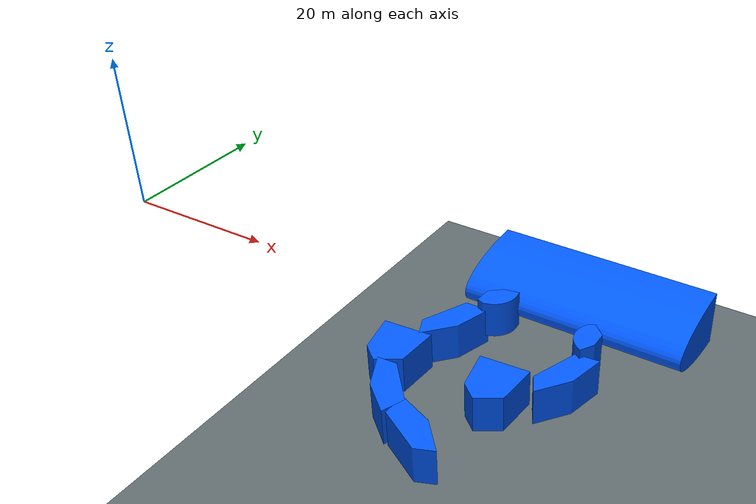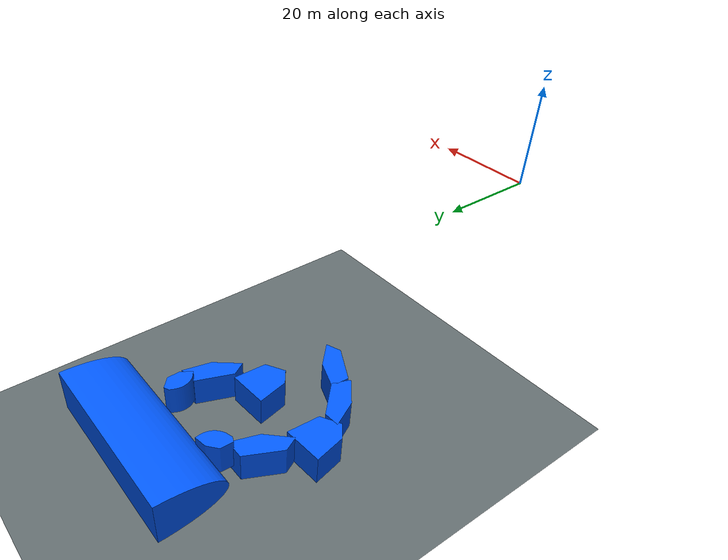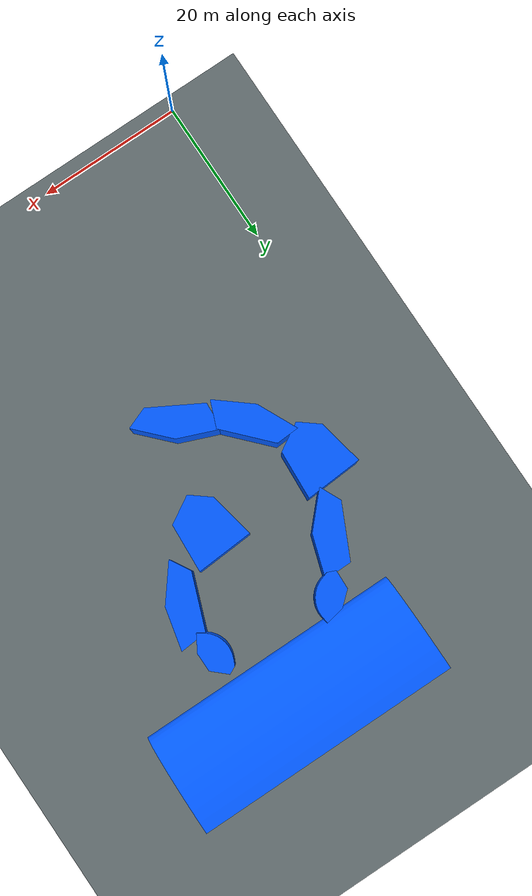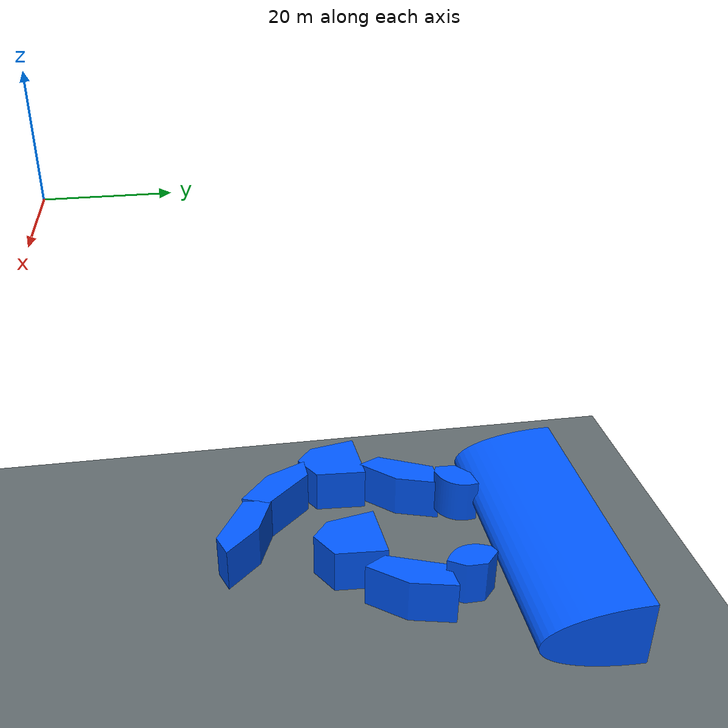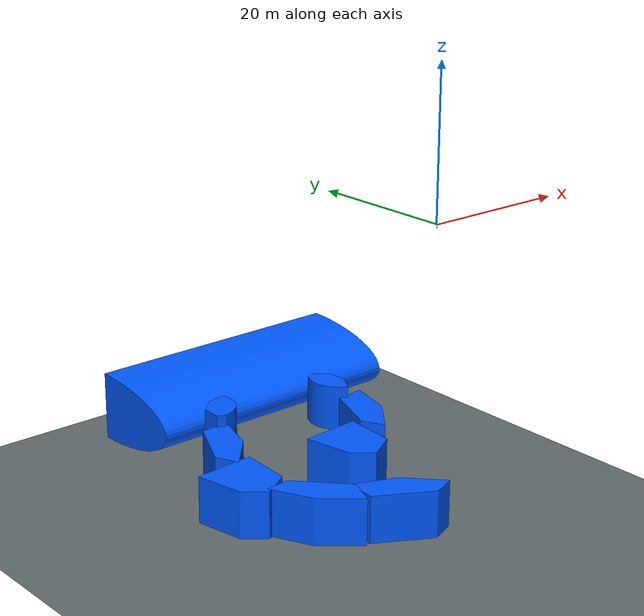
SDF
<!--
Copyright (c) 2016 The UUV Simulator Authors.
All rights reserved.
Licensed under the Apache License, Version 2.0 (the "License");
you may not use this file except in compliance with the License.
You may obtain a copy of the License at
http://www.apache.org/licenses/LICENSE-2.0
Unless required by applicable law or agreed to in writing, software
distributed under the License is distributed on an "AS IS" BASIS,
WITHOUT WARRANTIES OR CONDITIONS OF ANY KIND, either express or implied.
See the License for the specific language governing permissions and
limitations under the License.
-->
<sdf version="1.10">
 <world name="oceans_waves">
  <plugin filename="gz-sim-physics-system" name="gz::sim::systems::Physics"/>
  <plugin filename="gz-sim-user-commands-system" name="gz::sim::systems::UserCommands"/>
  <plugin filename="gz-sim-scene-broadcaster-system" name="gz::sim::systems::SceneBroadcaster"/>
  <plugin filename="gz-sim-sensors-system" name="gz::sim::systems::Sensors">
   <render_engine>ogre2</render_engine>
  </plugin>
  <plugin filename="gz-sim-velocity-control-system" name="gz::sim::systems::VelocityControl">
   <topic>/rexrov2/cmd_vel</topic>
  </plugin>
  <physics name="default_physics" default="true" type="ode">
   <max_step_size>0.002</max_step_size>
   <real_time_factor>1</real_time_factor>
   <real_time_update_rate>500</real_time_update_rate>
  </physics>
  <scene>
   <ambient>0.25 0.35 0.45 1.0</ambient>
   <background>0.015 0.05 0.10 1.0</background>
   <sky><clouds><speed>12</speed></clouds></sky>
   <shadows>1</shadows>
  </scene>
  <spherical_coordinates>
   <latitude_deg>56.71897669633431</latitude_deg>
   <longitude_deg>3.515625</longitude_deg>
  </spherical_coordinates>
  <light type="directional" name="sun1">
   <pose>50 0 150 0 0 0</pose>
   <diffuse>1 1 1 1</diffuse>
   <specular>.1 .1 .1 1</specular>
   <direction>0.3 0.3 -1</direction>
   <cast_shadows>false</cast_shadows>
  </light>
  <light type="directional" name="sun_diffuse">
   <pose>-50 0 -150 0 0 0</pose>
   <diffuse>0.6 0.6 0.6 1</diffuse>
   <specular>0 0 0 1</specular>
   <direction>-0.3 -0.3 -1</direction>
   <cast_shadows>false</cast_shadows>
  </light>
  <include><uri>model://ned_frame</uri></include>
  <model name="world_a_seabed">
   <static>true</static>
   <pose>30 45 -68 0 0 0</pose>
   <link name="link">
    <collision name="collision">
     <geometry><plane><normal>0 0 1</normal><size>180 180</size></plane></geometry>
    </collision>
    <visual name="visual">
     <geometry><plane><normal>0 0 1</normal><size>180 180</size></plane></geometry>
     <material><ambient>0.25 0.29 0.31 1</ambient><diffuse>0.38 0.42 0.43 1</diffuse></material>
    </visual>
   </link>
  </model>
  <include>
   <uri>model://obstacles/CubeSoft_5</uri>
   <name>cube_5</name>
   <pose>10 40 -60 0 1.57079633 3.14</pose>
   <static>true</static>
  </include>
  <include>
   <uri>model://obstacles/CubeSoft_6</uri>
   <name>cube_6</name>
   <pose>8 26 -60 -2 1.57079633 0.25</pose>
   <static>true</static>
  </include>
  <include>
   <uri>model://obstacles/CubeSoft_5</uri>
   <name>cube_7</name>
   <pose>32 40 -60 0 1.57079633 3.14</pose>
   <static>true</static>
  </include>
  <include>
   <uri>model://obstacles/CubeSoft_9</uri>
   <name>cube_9_1</name>
   <pose>42 66 -58 -0.12 1.57079633 -0.75</pose>
   <static>true</static>
  </include>
  <include>
   <uri>model://obstacles/CubeSoft_9</uri>
   <name>cube_9_2</name>
   <pose>12 68 -58 -0.8245 1.57079633 0.8245</pose>
   <static>true</static>
  </include>
  <include>
   <uri>model://obstacles/CubeSoft_6</uri>
   <name>cube_6_1</name>
   <pose>22 37 -60 -1.57079633 1.57079633 -2.15</pose>
   <static>true</static>
  </include>
  <include>
   <uri>model://obstacles/CubeSoft_6</uri>
   <name>moving_obs</name>
   <pose>20 58 -60 -2.1 1.57079633 2.1</pose>
   <static>true</static>
  </include>
  <include>
   <uri>model://obstacles/CubeSoft_6</uri>
   <name>moving_obs_1</name>
   <pose>47 55 -60 2 1.57 0</pose>
   <static>true</static>
  </include>
  <include>
   <uri>model://obstacles/CubeSoft_13</uri>
   <name>cube_13_1</name>
   <pose>55 87 -54 0 0 -1.57079633</pose>
   <static>true</static>
  </include>
  <plugin name="uuv_simulator_ros::UnderwaterCurrentROSPlugin" filename="libuuv_underwater_current_ros_plugin.so">
   <namespace>hydrodynamics</namespace>
   <constant_current>
    <topic>current_velocity</topic>
    <velocity><mean>0</mean><min>0</min><max>5</max><mu>0.0</mu><noiseAmp>0.0</noiseAmp></velocity>
    <horizontal_angle>
     <mean>0</mean>
     <min>-3.141592653589793238</min>
     <max>3.141592653589793238</max>
     <mu>0.0</mu>
     <noiseAmp>0.0</noiseAmp>
    </horizontal_angle>
    <vertical_angle>
     <mean>0</mean>
     <min>-3.141592653589793238</min>
     <max>3.141592653589793238</max>
     <mu>0.0</mu>
     <noiseAmp>0.0</noiseAmp>
    </vertical_angle>
   </constant_current>
  </plugin>
  <plugin name="gazebo::SphericalCoordinatesROSInterfacePlugin" filename="libuuv_sc_ros_interface_plugin.so"/>
 </world>
</sdf>

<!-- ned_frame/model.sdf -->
<sdf version='1.5'>
    <model name="world_ned">

      <pose>0 0 0 0 0 0</pose>
      <static>true</static>

      <link name="world_ned">
        <gravity>0</gravity>
        <pose>0 0 0 3.14159265359 0 1.5707963267948966</pose>

        <visual name="N_visual">
          <pose>0.25 0 0 1.5707963267948966 0 1.5707963267948966</pose>
          <geometry>
            <cylinder>
              <radius>0.01</radius>
              <length>0.5</length>
            </cylinder>
          </geometry>
          <material>
            <script>
              <uri>file://media/materials/scripts/gazebo.material</uri>
              <name>Gazebo/Red</name>
            </script>
          </material>
        </visual>

        <visual name="E_visual">
          <pose>0 0.25 0 1.5707963267948966 0 0</pose>
          <geometry>
            <cylinder>
              <radius>0.01</radius>
              <length>0.5</length>
            </cylinder>
          </geometry>
          <material>
            <script>
              <uri>file://media/materials/scripts/gazebo.material</uri>
              <name>Gazebo/Green</name>
            </script>
          </material>
        </visual>

        <visual name="D_visual">
          <pose>0 0 0.25 0 0 0</pose>
          <geometry>
            <cylinder>
              <radius>0.01</radius>
              <length>0.5</length>
            </cylinder>
          </geometry>
          <material>
            <script>
              <uri>file://media/materials/scripts/gazebo.material</uri>
              <name>Gazebo/Blue</name>
            </script>
          </material>
        </visual>
      </link>
    </model>
</sdf>

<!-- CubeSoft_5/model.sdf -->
<sdf version="1.6">
    <model name="CubeSoft">
        <static>true</static>
        <link name="link">
            <pose>0 0 0 1.57 3.14159 0</pose>
            <collision name="collision">
                <pose>4.0 -4.886 4.996 0 0 0</pose>
                <geometry>
                    <box>
                        <size>8.0 10.522 11.9</size>
                    </box>
                </geometry>
            </collision>
            <visual name="visual">
                <geometry>
                    <mesh>
                        <uri>meshes/5.stl</uri>
                        <scale>0.001 0.001 0.001</scale>
                    </mesh>
                </geometry>
                <material>
                    <ambient>0.0 0.22 0.95 1</ambient>
                    <diffuse>0.0 0.35 1.0 1</diffuse>
                    <specular>0.08 0.12 0.20 1</specular>
                </material>
            </visual>
        </link>
    </model>
</sdf>

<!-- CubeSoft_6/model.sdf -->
<sdf version="1.6">
    <model name="CubeSoft">
        <static>true</static>
        <link name="link">
            <pose>0 0 0 1.57 3.14159 0</pose>
            <collision name="collision">
                <pose>4.0 -4.875 7.944 0 0 0</pose>
                <geometry>
                    <box>
                        <size>8.0 15.506 6.004</size>
                    </box>
                </geometry>
            </collision>
            <visual name="visual">
                <geometry>
                    <mesh>
                        <uri>meshes/6.stl</uri>
                        <scale>0.001 0.001 0.001</scale>
                    </mesh>
                </geometry>
                <material>
                    <ambient>0.0 0.22 0.95 1</ambient>
                    <diffuse>0.0 0.35 1.0 1</diffuse>
                    <specular>0.08 0.12 0.20 1</specular>
                </material>
            </visual>
        </link>
    </model>
</sdf>

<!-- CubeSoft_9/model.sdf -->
<sdf version="1.6">
    <model name="CubeSoft">
        <static>true</static>
        <link name="link">
            <pose>0 0 0 1.57 3.14159 0</pose>
            <collision name="collision">
                <pose>4.0 2.082 4.423 0 0 0</pose>
                <geometry>
                    <box>
                        <size>8.0 6.597 6.599</size>
                    </box>
                </geometry>
            </collision>
            <visual name="visual">
                <geometry>
                    <mesh>
                        <uri>meshes/9.stl</uri>
                        <scale>0.001 0.001 0.001</scale>
                    </mesh>
                </geometry>
                <material>
                    <ambient>0.0 0.22 0.95 1</ambient>
                    <diffuse>0.0 0.35 1.0 1</diffuse>
                    <specular>0.08 0.12 0.20 1</specular>
                </material>
            </visual>
        </link>
    </model>
</sdf>

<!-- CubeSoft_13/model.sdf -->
<sdf version="1.6">
    <model name="CubeSoft">
        <static>true</static>
        <link name="link">
            <pose>0 0 0 1.57 3.14159 0</pose>
            <collision name="collision">
                <pose>-8.985 0.0 24.0 0 0 0</pose>
                <geometry>
                    <box>
                        <size>17.97 12.0 48.0</size>
                    </box>
                </geometry>
            </collision>
            <visual name="visual">
                <geometry>
                    <mesh>
                        <uri>meshes/SemiCylinder_12x8.stl</uri>
                        <scale>0.003 0.001 0.006</scale>
                    </mesh>
                </geometry>
                <material>
                    <ambient>0.0 0.22 0.95 1</ambient>
                    <diffuse>0.0 0.35 1.0 1</diffuse>
                    <specular>0.08 0.12 0.20 1</specular>
                </material>
            </visual>
        </link>
    </model>
</sdf>
